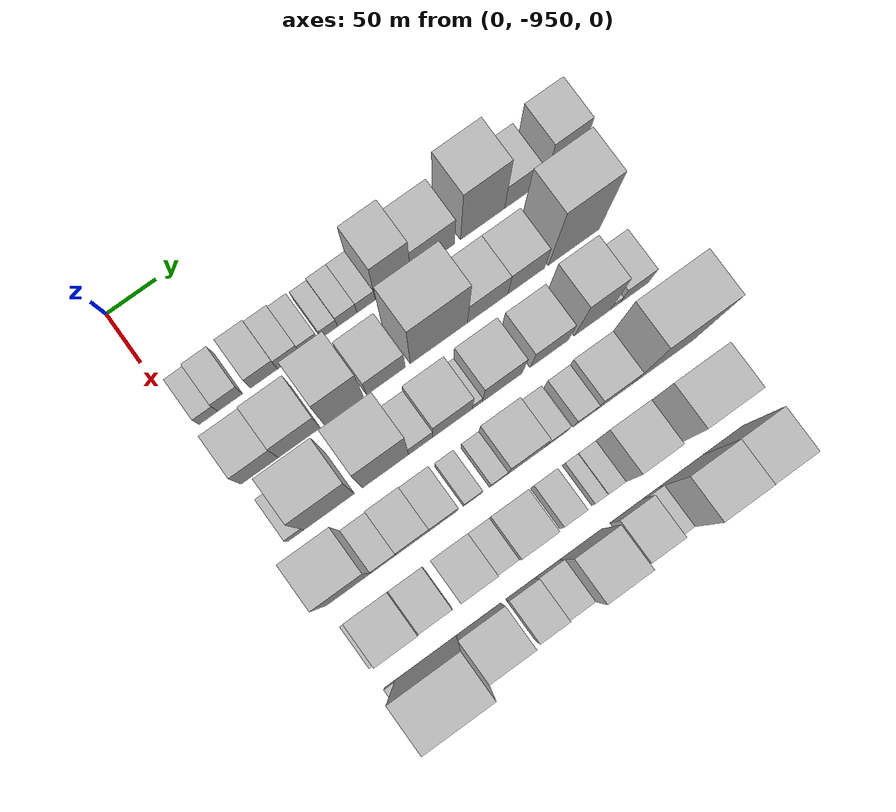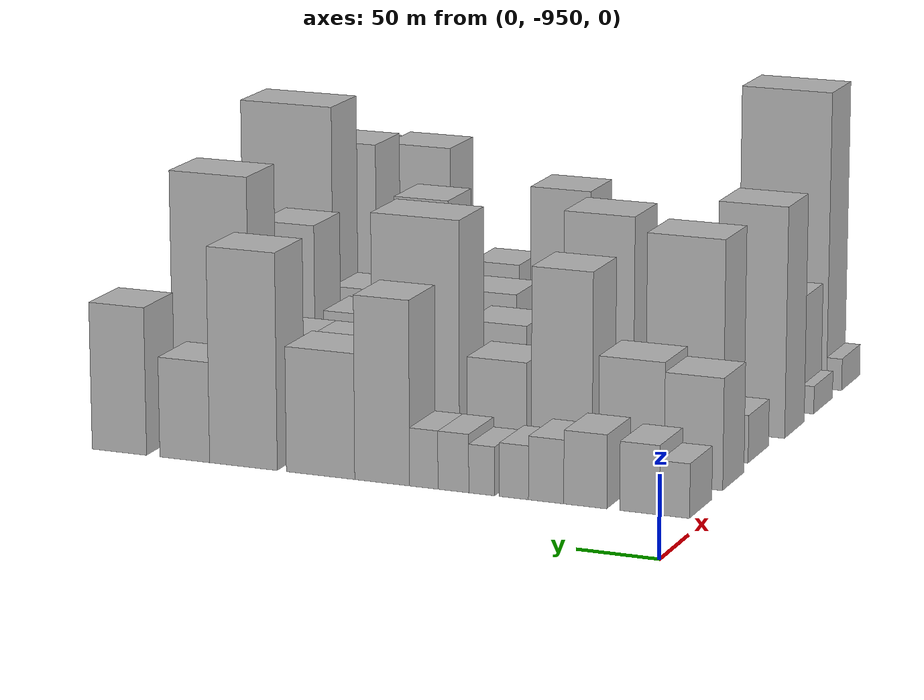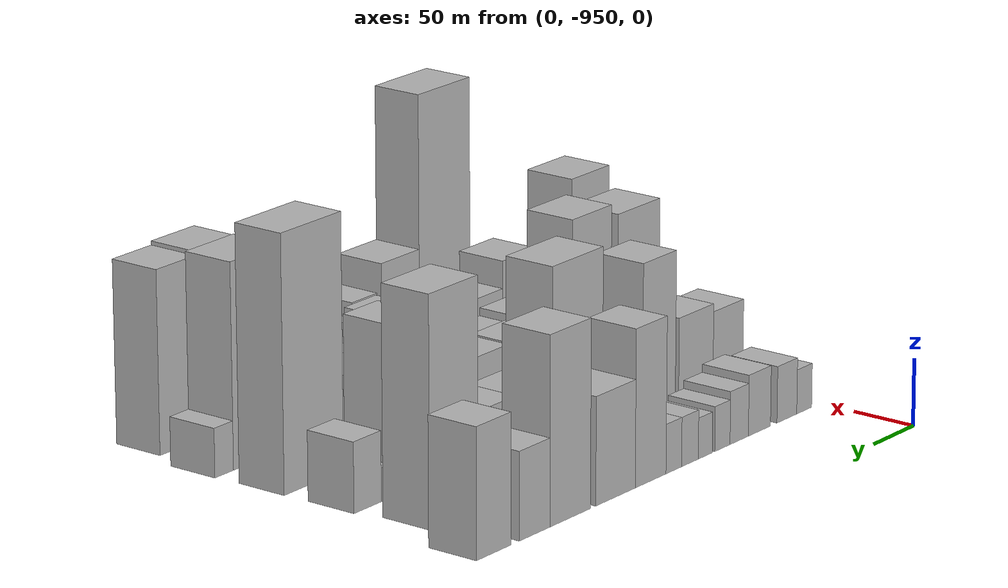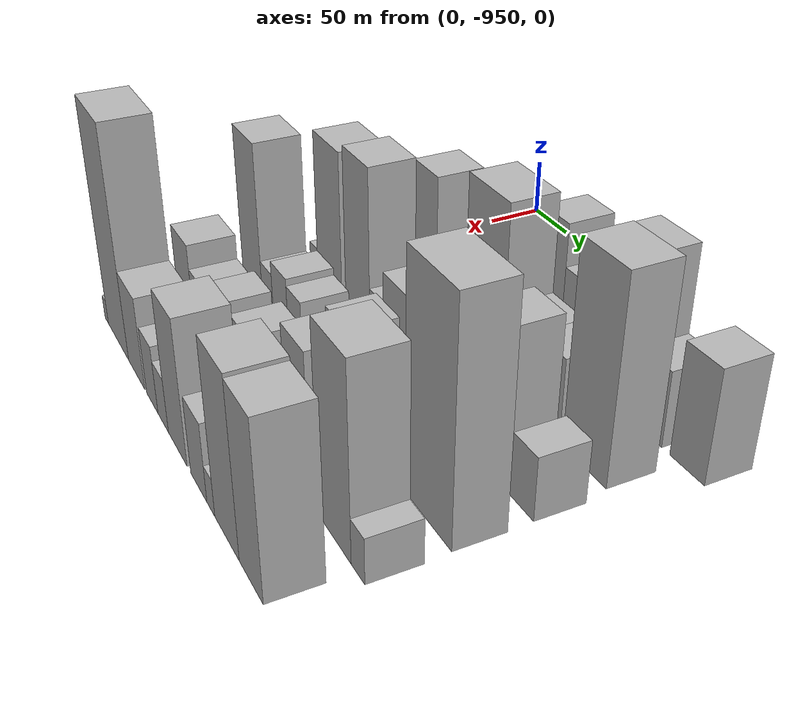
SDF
<sdf version="1.6">
 <world name="default">
  <model name="building_1">
   <static>1</static>
   <pose>100.0000 -930.6970 0 0.000000 0.000000 0.000000</pose>
   <link name="link">
    <pose>0 0 16.50 0 0 0</pose>
    <collision name="collision"><geometry><box><size>40.0000 18.6060 33.0000</size></box></geometry></collision>
    <visual name="visual">
     <cast_shadows>0</cast_shadows>
     <geometry><box><size>40.0000 18.6060 33.0000</size></box></geometry>
     <material>
      <script>
       <uri>model://HANNAS_wall/materials/scripts</uri>
       <uri>model://HANNAS_wall/materials/textures</uri>
       <name>vrc/HANNAS_wall</name>
      </script>
     </material>
    </visual>
   </link>
  </model>
  <model name="building_2">
   <static>1</static>
   <pose>100.0000 -909.1230 0 0.000000 0.000000 0.000000</pose>
   <link name="link">
    <pose>0 0 21.00 0 0 0</pose>
    <collision name="collision"><geometry><box><size>40.0000 24.5421 42.0000</size></box></geometry></collision>
    <visual name="visual">
     <cast_shadows>0</cast_shadows>
     <geometry><box><size>40.0000 24.5421 42.0000</size></box></geometry>
     <material>
      <script>
       <uri>model://HANNAS_wall/materials/scripts</uri>
       <uri>model://HANNAS_wall/materials/textures</uri>
       <name>vrc/HANNAS_wall</name>
      </script>
     </material>
    </visual>
   </link>
  </model>
  <model name="building_3">
   <static>1</static>
   <pose>100.0000 -875.3660 0 0.000000 0.000000 0.000000</pose>
   <link name="link">
    <pose>0 0 22.50 0 0 0</pose>
    <collision name="collision"><geometry><box><size>40.0000 26.9718 45.0000</size></box></geometry></collision>
    <visual name="visual">
     <cast_shadows>0</cast_shadows>
     <geometry><box><size>40.0000 26.9718 45.0000</size></box></geometry>
     <material>
      <script>
       <uri>model://HANNAS_wall/materials/scripts</uri>
       <uri>model://HANNAS_wall/materials/textures</uri>
       <name>vrc/HANNAS_wall</name>
      </script>
     </material>
    </visual>
   </link>
  </model>
  <model name="building_4">
   <static>1</static>
   <pose>100.0000 -850.7518 0 0.000000 0.000000 0.000000</pose>
   <link name="link">
    <pose>0 0 19.50 0 0 0</pose>
    <collision name="collision"><geometry><box><size>40.0000 22.2566 39.0000</size></box></geometry></collision>
    <visual name="visual">
     <cast_shadows>0</cast_shadows>
     <geometry><box><size>40.0000 22.2566 39.0000</size></box></geometry>
     <material>
      <script>
       <uri>model://HANNAS_wall/materials/scripts</uri>
       <uri>model://HANNAS_wall/materials/textures</uri>
       <name>vrc/HANNAS_wall</name>
      </script>
     </material>
    </visual>
   </link>
  </model>
  <model name="building_5">
   <static>1</static>
   <pose>100.0000 -830.4698 0 0.000000 0.000000 0.000000</pose>
   <link name="link">
    <pose>0 0 16.50 0 0 0</pose>
    <collision name="collision"><geometry><box><size>40.0000 18.3075 33.0000</size></box></geometry></collision>
    <visual name="visual">
     <cast_shadows>0</cast_shadows>
     <geometry><box><size>40.0000 18.3075 33.0000</size></box></geometry>
     <material>
      <script>
       <uri>model://HANNAS_wall/materials/scripts</uri>
       <uri>model://HANNAS_wall/materials/textures</uri>
       <name>vrc/HANNAS_wall</name>
      </script>
     </material>
    </visual>
   </link>
  </model>
  <model name="building_6">
   <static>1</static>
   <pose>100.0000 -810.0191 0 0.000000 0.000000 0.000000</pose>
   <link name="link">
    <pose>0 0 15.00 0 0 0</pose>
    <collision name="collision"><geometry><box><size>40.0000 16.5940 30.0000</size></box></geometry></collision>
    <visual name="visual">
     <cast_shadows>0</cast_shadows>
     <geometry><box><size>40.0000 16.5940 30.0000</size></box></geometry>
     <material>
      <script>
       <uri>model://HANNAS_wall/materials/scripts</uri>
       <uri>model://HANNAS_wall/materials/textures</uri>
       <name>vrc/HANNAS_wall</name>
      </script>
     </material>
    </visual>
   </link>
  </model>
  <model name="building_7">
   <static>1</static>
   <pose>100.0000 -791.8548 0 0.000000 0.000000 0.000000</pose>
   <link name="link">
    <pose>0 0 18.00 0 0 0</pose>
    <collision name="collision"><geometry><box><size>40.0000 19.7345 36.0000</size></box></geometry></collision>
    <visual name="visual">
     <cast_shadows>0</cast_shadows>
     <geometry><box><size>40.0000 19.7345 36.0000</size></box></geometry>
     <material>
      <script>
       <uri>model://HANNAS_wall/materials/scripts</uri>
       <uri>model://HANNAS_wall/materials/textures</uri>
       <name>vrc/HANNAS_wall</name>
      </script>
     </material>
    </visual>
   </link>
  </model>
  <model name="building_8">
   <static>1</static>
   <pose>100.0000 -772.8370 0 0.000000 0.000000 0.000000</pose>
   <link name="link">
    <pose>0 0 18.00 0 0 0</pose>
    <collision name="collision"><geometry><box><size>40.0000 18.3012 36.0000</size></box></geometry></collision>
    <visual name="visual">
     <cast_shadows>0</cast_shadows>
     <geometry><box><size>40.0000 18.3012 36.0000</size></box></geometry>
     <material>
      <script>
       <uri>model://HANNAS_wall/materials/scripts</uri>
       <uri>model://HANNAS_wall/materials/textures</uri>
       <name>vrc/HANNAS_wall</name>
      </script>
     </material>
    </visual>
   </link>
  </model>
  <model name="building_9">
   <static>1</static>
   <pose>100.0000 -745.8943 0 0.000000 0.000000 0.000000</pose>
   <link name="link">
    <pose>0 0 57.00 0 0 0</pose>
    <collision name="collision"><geometry><box><size>40.0000 35.5841 114.0000</size></box></geometry></collision>
    <visual name="visual">
     <cast_shadows>0</cast_shadows>
     <geometry><box><size>40.0000 35.5841 114.0000</size></box></geometry>
     <material>
      <script>
       <uri>model://HANNAS_wall/materials/scripts</uri>
       <uri>model://HANNAS_wall/materials/textures</uri>
       <name>vrc/HANNAS_wall</name>
      </script>
     </material>
    </visual>
   </link>
  </model>
  <model name="building_10">
   <static>1</static>
   <pose>100.0000 -705.6278 0 0.000000 0.000000 0.000000</pose>
   <link name="link">
    <pose>0 0 39.00 0 0 0</pose>
    <collision name="collision"><geometry><box><size>40.0000 44.9490 78.0000</size></box></geometry></collision>
    <visual name="visual">
     <cast_shadows>0</cast_shadows>
     <geometry><box><size>40.0000 44.9490 78.0000</size></box></geometry>
     <material>
      <script>
       <uri>model://HANNAS_wall/materials/scripts</uri>
       <uri>model://HANNAS_wall/materials/textures</uri>
       <name>vrc/HANNAS_wall</name>
      </script>
     </material>
    </visual>
   </link>
  </model>
  <model name="building_11">
   <static>1</static>
   <pose>100.0000 -654.5918 0 0.000000 0.000000 0.000000</pose>
   <link name="link">
    <pose>0 0 67.50 0 0 0</pose>
    <collision name="collision"><geometry><box><size>40.0000 45.1232 135.0000</size></box></geometry></collision>
    <visual name="visual">
     <cast_shadows>0</cast_shadows>
     <geometry><box><size>40.0000 45.1232 135.0000</size></box></geometry>
     <material>
      <script>
       <uri>model://HANNAS_wall/materials/scripts</uri>
       <uri>model://HANNAS_wall/materials/textures</uri>
       <name>vrc/HANNAS_wall</name>
      </script>
     </material>
    </visual>
   </link>
  </model>
  <model name="building_12">
   <static>1</static>
   <pose>100.0000 -615.2413 0 0.000000 0.000000 0.000000</pose>
   <link name="link">
    <pose>0 0 31.50 0 0 0</pose>
    <collision name="collision"><geometry><box><size>40.0000 33.5777 63.0000</size></box></geometry></collision>
    <visual name="visual">
     <cast_shadows>0</cast_shadows>
     <geometry><box><size>40.0000 33.5777 63.0000</size></box></geometry>
     <material>
      <script>
       <uri>model://HANNAS_wall/materials/scripts</uri>
       <uri>model://HANNAS_wall/materials/textures</uri>
       <name>vrc/HANNAS_wall</name>
      </script>
     </material>
    </visual>
   </link>
  </model>
  <model name="building_13">
   <static>1</static>
   <pose>100.0000 -570.8924 0 0.000000 0.000000 0.000000</pose>
   <link name="link">
    <pose>0 0 46.50 0 0 0</pose>
    <collision name="collision"><geometry><box><size>40.0000 37.1200 93.0000</size></box></geometry></collision>
    <visual name="visual">
     <cast_shadows>0</cast_shadows>
     <geometry><box><size>40.0000 37.1200 93.0000</size></box></geometry>
     <material>
      <script>
       <uri>model://HANNAS_wall/materials/scripts</uri>
       <uri>model://HANNAS_wall/materials/textures</uri>
       <name>vrc/HANNAS_wall</name>
      </script>
     </material>
    </visual>
   </link>
  </model>
  <model name="building_55">
   <static>1</static>
   <pose>160.0000 -921.5619 0 0.000000 0.000000 0.000000</pose>
   <link name="link">
    <pose>0 0 34.50 0 0 0</pose>
    <collision name="collision"><geometry><box><size>40.0000 36.8763 69.0000</size></box></geometry></collision>
    <visual name="visual">
     <cast_shadows>0</cast_shadows>
     <geometry><box><size>40.0000 36.8763 69.0000</size></box></geometry>
     <material>
      <script>
       <uri>model://HANNAS_wall/materials/scripts</uri>
       <uri>model://HANNAS_wall/materials/textures</uri>
       <name>vrc/HANNAS_wall</name>
      </script>
     </material>
    </visual>
   </link>
  </model>
  <model name="building_56">
   <static>1</static>
   <pose>160.0000 -882.2586 0 0.000000 0.000000 0.000000</pose>
   <link name="link">
    <pose>0 0 37.50 0 0 0</pose>
    <collision name="collision"><geometry><box><size>40.0000 41.7302 75.0000</size></box></geometry></collision>
    <visual name="visual">
     <cast_shadows>0</cast_shadows>
     <geometry><box><size>40.0000 41.7302 75.0000</size></box></geometry>
     <material>
      <script>
       <uri>model://HANNAS_wall/materials/scripts</uri>
       <uri>model://HANNAS_wall/materials/textures</uri>
       <name>vrc/HANNAS_wall</name>
      </script>
     </material>
    </visual>
   </link>
  </model>
  <model name="building_57">
   <static>1</static>
   <pose>160.0000 -837.8161 0 0.000000 0.000000 0.000000</pose>
   <link name="link">
    <pose>0 0 63.00 0 0 0</pose>
    <collision name="collision"><geometry><box><size>40.0000 39.1547 126.0000</size></box></geometry></collision>
    <visual name="visual">
     <cast_shadows>0</cast_shadows>
     <geometry><box><size>40.0000 39.1547 126.0000</size></box></geometry>
     <material>
      <script>
       <uri>model://HANNAS_wall/materials/scripts</uri>
       <uri>model://HANNAS_wall/materials/textures</uri>
       <name>vrc/HANNAS_wall</name>
      </script>
     </material>
    </visual>
   </link>
  </model>
  <model name="building_58">
   <static>1</static>
   <pose>160.0000 -795.7732 0 0.000000 0.000000 0.000000</pose>
   <link name="link">
    <pose>0 0 33.00 0 0 0</pose>
    <collision name="collision"><geometry><box><size>40.0000 38.9312 66.0000</size></box></geometry></collision>
    <visual name="visual">
     <cast_shadows>0</cast_shadows>
     <geometry><box><size>40.0000 38.9312 66.0000</size></box></geometry>
     <material>
      <script>
       <uri>model://HANNAS_wall/materials/scripts</uri>
       <uri>model://HANNAS_wall/materials/textures</uri>
       <name>vrc/HANNAS_wall</name>
      </script>
     </material>
    </visual>
   </link>
  </model>
  <model name="building_59">
   <static>1</static>
   <pose>160.0000 -742.4907 0 0.000000 0.000000 0.000000</pose>
   <link name="link">
    <pose>0 0 75.00 0 0 0</pose>
    <collision name="collision"><geometry><box><size>40.0000 57.6338 150.0000</size></box></geometry></collision>
    <visual name="visual">
     <cast_shadows>0</cast_shadows>
     <geometry><box><size>40.0000 57.6338 150.0000</size></box></geometry>
     <material>
      <script>
       <uri>model://HANNAS_wall/materials/scripts</uri>
       <uri>model://HANNAS_wall/materials/textures</uri>
       <name>vrc/HANNAS_wall</name>
      </script>
     </material>
    </visual>
   </link>
  </model>
  <model name="building_60">
   <static>1</static>
   <pose>160.0000 -693.0982 0 0.000000 0.000000 0.000000</pose>
   <link name="link">
    <pose>0 0 34.50 0 0 0</pose>
    <collision name="collision"><geometry><box><size>40.0000 41.1514 69.0000</size></box></geometry></collision>
    <visual name="visual">
     <cast_shadows>0</cast_shadows>
     <geometry><box><size>40.0000 41.1514 69.0000</size></box></geometry>
     <material>
      <script>
       <uri>model://HANNAS_wall/materials/scripts</uri>
       <uri>model://HANNAS_wall/materials/textures</uri>
       <name>vrc/HANNAS_wall</name>
      </script>
     </material>
    </visual>
   </link>
  </model>
  <model name="building_61">
   <static>1</static>
   <pose>160.0000 -653.8175 0 0.000000 0.000000 0.000000</pose>
   <link name="link">
    <pose>0 0 34.50 0 0 0</pose>
    <collision name="collision"><geometry><box><size>40.0000 37.4099 69.0000</size></box></geometry></collision>
    <visual name="visual">
     <cast_shadows>0</cast_shadows>
     <geometry><box><size>40.0000 37.4099 69.0000</size></box></geometry>
     <material>
      <script>
       <uri>model://HANNAS_wall/materials/scripts</uri>
       <uri>model://HANNAS_wall/materials/textures</uri>
       <name>vrc/HANNAS_wall</name>
      </script>
     </material>
    </visual>
   </link>
  </model>
  <model name="building_62">
   <static>1</static>
   <pose>160.0000 -604.9038 0 0.000000 0.000000 0.000000</pose>
   <link name="link">
    <pose>0 0 82.50 0 0 0</pose>
    <collision name="collision"><geometry><box><size>40.0000 52.4174 165.0000</size></box></geometry></collision>
    <visual name="visual">
     <cast_shadows>0</cast_shadows>
     <geometry><box><size>40.0000 52.4174 165.0000</size></box></geometry>
     <material>
      <script>
       <uri>model://HANNAS_wall/materials/scripts</uri>
       <uri>model://HANNAS_wall/materials/textures</uri>
       <name>vrc/HANNAS_wall</name>
      </script>
     </material>
    </visual>
   </link>
  </model>
  <model name="building_109">
   <static>1</static>
   <pose>220.0000 -927.9561 0 0.000000 0.000000 0.000000</pose>
   <link name="link">
    <pose>0 0 15.00 0 0 0</pose>
    <collision name="collision"><geometry><box><size>40.0000 16.0878 30.0000</size></box></geometry></collision>
    <visual name="visual">
     <cast_shadows>0</cast_shadows>
     <geometry><box><size>40.0000 16.0878 30.0000</size></box></geometry>
     <material>
      <script>
       <uri>model://HANNAS_wall/materials/scripts</uri>
       <uri>model://HANNAS_wall/materials/textures</uri>
       <name>vrc/HANNAS_wall</name>
      </script>
     </material>
    </visual>
   </link>
  </model>
  <model name="building_110">
   <static>1</static>
   <pose>220.0000 -894.9111 0 0.000000 0.000000 0.000000</pose>
   <link name="link">
    <pose>0 0 69.00 0 0 0</pose>
    <collision name="collision"><geometry><box><size>40.0000 50.0023 138.0000</size></box></geometry></collision>
    <visual name="visual">
     <cast_shadows>0</cast_shadows>
     <geometry><box><size>40.0000 50.0023 138.0000</size></box></geometry>
     <material>
      <script>
       <uri>model://HANNAS_wall/materials/scripts</uri>
       <uri>model://HANNAS_wall/materials/textures</uri>
       <name>vrc/HANNAS_wall</name>
      </script>
     </material>
    </visual>
   </link>
  </model>
  <model name="building_111">
   <static>1</static>
   <pose>220.0000 -838.9788 0 0.000000 0.000000 0.000000</pose>
   <link name="link">
    <pose>0 0 73.50 0 0 0</pose>
    <collision name="collision"><geometry><box><size>40.0000 45.8623 147.0000</size></box></geometry></collision>
    <visual name="visual">
     <cast_shadows>0</cast_shadows>
     <geometry><box><size>40.0000 45.8623 147.0000</size></box></geometry>
     <material>
      <script>
       <uri>model://HANNAS_wall/materials/scripts</uri>
       <uri>model://HANNAS_wall/materials/textures</uri>
       <name>vrc/HANNAS_wall</name>
      </script>
     </material>
    </visual>
   </link>
  </model>
  <model name="building_112">
   <static>1</static>
   <pose>220.0000 -803.9670 0 0.000000 0.000000 0.000000</pose>
   <link name="link">
    <pose>0 0 22.50 0 0 0</pose>
    <collision name="collision"><geometry><box><size>40.0000 24.1612 45.0000</size></box></geometry></collision>
    <visual name="visual">
     <cast_shadows>0</cast_shadows>
     <geometry><box><size>40.0000 24.1612 45.0000</size></box></geometry>
     <material>
      <script>
       <uri>model://HANNAS_wall/materials/scripts</uri>
       <uri>model://HANNAS_wall/materials/textures</uri>
       <name>vrc/HANNAS_wall</name>
      </script>
     </material>
    </visual>
   </link>
  </model>
  <model name="building_113">
   <static>1</static>
   <pose>220.0000 -772.1821 0 0.000000 0.000000 0.000000</pose>
   <link name="link">
    <pose>0 0 36.00 0 0 0</pose>
    <collision name="collision"><geometry><box><size>40.0000 39.4087 72.0000</size></box></geometry></collision>
    <visual name="visual">
     <cast_shadows>0</cast_shadows>
     <geometry><box><size>40.0000 39.4087 72.0000</size></box></geometry>
     <material>
      <script>
       <uri>model://HANNAS_wall/materials/scripts</uri>
       <uri>model://HANNAS_wall/materials/textures</uri>
       <name>vrc/HANNAS_wall</name>
      </script>
     </material>
    </visual>
   </link>
  </model>
  <model name="building_114">
   <static>1</static>
   <pose>220.0000 -747.4116 0 0.000000 0.000000 0.000000</pose>
   <link name="link">
    <pose>0 0 12.00 0 0 0</pose>
    <collision name="collision"><geometry><box><size>40.0000 10.1324 24.0000</size></box></geometry></collision>
    <visual name="visual">
     <cast_shadows>0</cast_shadows>
     <geometry><box><size>40.0000 10.1324 24.0000</size></box></geometry>
     <material>
      <script>
       <uri>model://HANNAS_wall/materials/scripts</uri>
       <uri>model://HANNAS_wall/materials/textures</uri>
       <name>vrc/HANNAS_wall</name>
      </script>
     </material>
    </visual>
   </link>
  </model>
  <model name="building_115">
   <static>1</static>
   <pose>220.0000 -722.0015 0 0.000000 0.000000 0.000000</pose>
   <link name="link">
    <pose>0 0 37.50 0 0 0</pose>
    <collision name="collision"><geometry><box><size>40.0000 40.6878 75.0000</size></box></geometry></collision>
    <visual name="visual">
     <cast_shadows>0</cast_shadows>
     <geometry><box><size>40.0000 40.6878 75.0000</size></box></geometry>
     <material>
      <script>
       <uri>model://HANNAS_wall/materials/scripts</uri>
       <uri>model://HANNAS_wall/materials/textures</uri>
       <name>vrc/HANNAS_wall</name>
      </script>
     </material>
    </visual>
   </link>
  </model>
  <model name="building_116">
   <static>1</static>
   <pose>220.0000 -674.2500 0 0.000000 0.000000 0.000000</pose>
   <link name="link">
    <pose>0 0 34.50 0 0 0</pose>
    <collision name="collision"><geometry><box><size>40.0000 38.8151 69.0000</size></box></geometry></collision>
    <visual name="visual">
     <cast_shadows>0</cast_shadows>
     <geometry><box><size>40.0000 38.8151 69.0000</size></box></geometry>
     <material>
      <script>
       <uri>model://HANNAS_wall/materials/scripts</uri>
       <uri>model://HANNAS_wall/materials/textures</uri>
       <name>vrc/HANNAS_wall</name>
      </script>
     </material>
    </visual>
   </link>
  </model>
  <model name="building_117">
   <static>1</static>
   <pose>220.0000 -630.3171 0 0.000000 0.000000 0.000000</pose>
   <link name="link">
    <pose>0 0 61.50 0 0 0</pose>
    <collision name="collision"><geometry><box><size>40.0000 37.0508 123.0000</size></box></geometry></collision>
    <visual name="visual">
     <cast_shadows>0</cast_shadows>
     <geometry><box><size>40.0000 37.0508 123.0000</size></box></geometry>
     <material>
      <script>
       <uri>model://HANNAS_wall/materials/scripts</uri>
       <uri>model://HANNAS_wall/materials/textures</uri>
       <name>vrc/HANNAS_wall</name>
      </script>
     </material>
    </visual>
   </link>
  </model>
  <model name="building_118">
   <static>1</static>
   <pose>220.0000 -606.8396 0 0.000000 0.000000 0.000000</pose>
   <link name="link">
    <pose>0 0 12.00 0 0 0</pose>
    <collision name="collision"><geometry><box><size>40.0000 9.9041 24.0000</size></box></geometry></collision>
    <visual name="visual">
     <cast_shadows>0</cast_shadows>
     <geometry><box><size>40.0000 9.9041 24.0000</size></box></geometry>
     <material>
      <script>
       <uri>model://HANNAS_wall/materials/scripts</uri>
       <uri>model://HANNAS_wall/materials/textures</uri>
       <name>vrc/HANNAS_wall</name>
      </script>
     </material>
    </visual>
   </link>
  </model>
  <model name="building_119">
   <static>1</static>
   <pose>220.0000 -587.2385 0 0.000000 0.000000 0.000000</pose>
   <link name="link">
    <pose>0 0 25.50 0 0 0</pose>
    <collision name="collision"><geometry><box><size>40.0000 29.2981 51.0000</size></box></geometry></collision>
    <visual name="visual">
     <cast_shadows>0</cast_shadows>
     <geometry><box><size>40.0000 29.2981 51.0000</size></box></geometry>
     <material>
      <script>
       <uri>model://HANNAS_wall/materials/scripts</uri>
       <uri>model://HANNAS_wall/materials/textures</uri>
       <name>vrc/HANNAS_wall</name>
      </script>
     </material>
    </visual>
   </link>
  </model>
  <model name="building_161">
   <static>1</static>
   <pose>280.0000 -917.5555 0 0.000000 0.000000 0.000000</pose>
   <link name="link">
    <pose>0 0 73.50 0 0 0</pose>
    <collision name="collision"><geometry><box><size>40.0000 44.8889 147.0000</size></box></geometry></collision>
    <visual name="visual">
     <cast_shadows>0</cast_shadows>
     <geometry><box><size>40.0000 44.8889 147.0000</size></box></geometry>
     <material>
      <script>
       <uri>model://HANNAS_wall/materials/scripts</uri>
       <uri>model://HANNAS_wall/materials/textures</uri>
       <name>vrc/HANNAS_wall</name>
      </script>
     </material>
    </visual>
   </link>
  </model>
  <model name="building_162">
   <static>1</static>
   <pose>280.0000 -882.9296 0 0.000000 0.000000 0.000000</pose>
   <link name="link">
    <pose>0 0 22.50 0 0 0</pose>
    <collision name="collision"><geometry><box><size>40.0000 24.3629 45.0000</size></box></geometry></collision>
    <visual name="visual">
     <cast_shadows>0</cast_shadows>
     <geometry><box><size>40.0000 24.3629 45.0000</size></box></geometry>
     <material>
      <script>
       <uri>model://HANNAS_wall/materials/scripts</uri>
       <uri>model://HANNAS_wall/materials/textures</uri>
       <name>vrc/HANNAS_wall</name>
      </script>
     </material>
    </visual>
   </link>
  </model>
  <model name="building_163">
   <static>1</static>
   <pose>280.0000 -854.7456 0 0.000000 0.000000 0.000000</pose>
   <link name="link">
    <pose>0 0 28.50 0 0 0</pose>
    <collision name="collision"><geometry><box><size>40.0000 32.0053 57.0000</size></box></geometry></collision>
    <visual name="visual">
     <cast_shadows>0</cast_shadows>
     <geometry><box><size>40.0000 32.0053 57.0000</size></box></geometry>
     <material>
      <script>
       <uri>model://HANNAS_wall/materials/scripts</uri>
       <uri>model://HANNAS_wall/materials/textures</uri>
       <name>vrc/HANNAS_wall</name>
      </script>
     </material>
    </visual>
   </link>
  </model>
  <model name="building_164">
   <static>1</static>
   <pose>280.0000 -824.6049 0 0.000000 0.000000 0.000000</pose>
   <link name="link">
    <pose>0 0 25.50 0 0 0</pose>
    <collision name="collision"><geometry><box><size>40.0000 28.2760 51.0000</size></box></geometry></collision>
    <visual name="visual">
     <cast_shadows>0</cast_shadows>
     <geometry><box><size>40.0000 28.2760 51.0000</size></box></geometry>
     <material>
      <script>
       <uri>model://HANNAS_wall/materials/scripts</uri>
       <uri>model://HANNAS_wall/materials/textures</uri>
       <name>vrc/HANNAS_wall</name>
      </script>
     </material>
    </visual>
   </link>
  </model>
  <model name="building_165">
   <static>1</static>
   <pose>280.0000 -795.3845 0 0.000000 0.000000 0.000000</pose>
   <link name="link">
    <pose>0 0 16.50 0 0 0</pose>
    <collision name="collision"><geometry><box><size>40.0000 18.1649 33.0000</size></box></geometry></collision>
    <visual name="visual">
     <cast_shadows>0</cast_shadows>
     <geometry><box><size>40.0000 18.1649 33.0000</size></box></geometry>
     <material>
      <script>
       <uri>model://HANNAS_wall/materials/scripts</uri>
       <uri>model://HANNAS_wall/materials/textures</uri>
       <name>vrc/HANNAS_wall</name>
      </script>
     </material>
    </visual>
   </link>
  </model>
  <model name="building_166">
   <static>1</static>
   <pose>280.0000 -769.8248 0 0.000000 0.000000 0.000000</pose>
   <link name="link">
    <pose>0 0 16.50 0 0 0</pose>
    <collision name="collision"><geometry><box><size>40.0000 16.9545 33.0000</size></box></geometry></collision>
    <visual name="visual">
     <cast_shadows>0</cast_shadows>
     <geometry><box><size>40.0000 16.9545 33.0000</size></box></geometry>
     <material>
      <script>
       <uri>model://HANNAS_wall/materials/scripts</uri>
       <uri>model://HANNAS_wall/materials/textures</uri>
       <name>vrc/HANNAS_wall</name>
      </script>
     </material>
    </visual>
   </link>
  </model>
  <model name="building_167">
   <static>1</static>
   <pose>280.0000 -742.4492 0 0.000000 0.000000 0.000000</pose>
   <link name="link">
    <pose>0 0 37.50 0 0 0</pose>
    <collision name="collision"><geometry><box><size>40.0000 37.7968 75.0000</size></box></geometry></collision>
    <visual name="visual">
     <cast_shadows>0</cast_shadows>
     <geometry><box><size>40.0000 37.7968 75.0000</size></box></geometry>
     <material>
      <script>
       <uri>model://HANNAS_wall/materials/scripts</uri>
       <uri>model://HANNAS_wall/materials/textures</uri>
       <name>vrc/HANNAS_wall</name>
      </script>
     </material>
    </visual>
   </link>
  </model>
  <model name="building_168">
   <static>1</static>
   <pose>280.0000 -711.9167 0 0.000000 0.000000 0.000000</pose>
   <link name="link">
    <pose>0 0 19.50 0 0 0</pose>
    <collision name="collision"><geometry><box><size>40.0000 23.2680 39.0000</size></box></geometry></collision>
    <visual name="visual">
     <cast_shadows>0</cast_shadows>
     <geometry><box><size>40.0000 23.2680 39.0000</size></box></geometry>
     <material>
      <script>
       <uri>model://HANNAS_wall/materials/scripts</uri>
       <uri>model://HANNAS_wall/materials/textures</uri>
       <name>vrc/HANNAS_wall</name>
      </script>
     </material>
    </visual>
   </link>
  </model>
  <model name="building_169">
   <static>1</static>
   <pose>280.0000 -683.4026 0 0.000000 0.000000 0.000000</pose>
   <link name="link">
    <pose>0 0 21.00 0 0 0</pose>
    <collision name="collision"><geometry><box><size>40.0000 21.7603 42.0000</size></box></geometry></collision>
    <visual name="visual">
     <cast_shadows>0</cast_shadows>
     <geometry><box><size>40.0000 21.7603 42.0000</size></box></geometry>
     <material>
      <script>
       <uri>model://HANNAS_wall/materials/scripts</uri>
       <uri>model://HANNAS_wall/materials/textures</uri>
       <name>vrc/HANNAS_wall</name>
      </script>
     </material>
    </visual>
   </link>
  </model>
  <model name="building_170">
   <static>1</static>
   <pose>280.0000 -653.6418 0 0.000000 0.000000 0.000000</pose>
   <link name="link">
    <pose>0 0 34.50 0 0 0</pose>
    <collision name="collision"><geometry><box><size>40.0000 37.7612 69.0000</size></box></geometry></collision>
    <visual name="visual">
     <cast_shadows>0</cast_shadows>
     <geometry><box><size>40.0000 37.7612 69.0000</size></box></geometry>
     <material>
      <script>
       <uri>model://HANNAS_wall/materials/scripts</uri>
       <uri>model://HANNAS_wall/materials/textures</uri>
       <name>vrc/HANNAS_wall</name>
      </script>
     </material>
    </visual>
   </link>
  </model>
  <model name="building_171">
   <static>1</static>
   <pose>280.0000 -603.0495 0 0.000000 0.000000 0.000000</pose>
   <link name="link">
    <pose>0 0 93.00 0 0 0</pose>
    <collision name="collision"><geometry><box><size>40.0000 63.4233 186.0000</size></box></geometry></collision>
    <visual name="visual">
     <cast_shadows>0</cast_shadows>
     <geometry><box><size>40.0000 63.4233 186.0000</size></box></geometry>
     <material>
      <script>
       <uri>model://HANNAS_wall/materials/scripts</uri>
       <uri>model://HANNAS_wall/materials/textures</uri>
       <name>vrc/HANNAS_wall</name>
      </script>
     </material>
    </visual>
   </link>
  </model>
  <model name="building_217">
   <static>1</static>
   <pose>340.0000 -936.1066 0 0.000000 0.000000 0.000000</pose>
   <link name="link">
    <pose>0 0 9.00 0 0 0</pose>
    <collision name="collision"><geometry><box><size>40.0000 7.7868 18.0000</size></box></geometry></collision>
    <visual name="visual">
     <cast_shadows>0</cast_shadows>
     <geometry><box><size>40.0000 7.7868 18.0000</size></box></geometry>
     <material>
      <script>
       <uri>model://HANNAS_wall/materials/scripts</uri>
       <uri>model://HANNAS_wall/materials/textures</uri>
       <name>vrc/HANNAS_wall</name>
      </script>
     </material>
    </visual>
   </link>
  </model>
  <model name="building_218">
   <static>1</static>
   <pose>340.0000 -911.9743 0 0.000000 0.000000 0.000000</pose>
   <link name="link">
    <pose>0 0 37.50 0 0 0</pose>
    <collision name="collision"><geometry><box><size>40.0000 40.4778 75.0000</size></box></geometry></collision>
    <visual name="visual">
     <cast_shadows>0</cast_shadows>
     <geometry><box><size>40.0000 40.4778 75.0000</size></box></geometry>
     <material>
      <script>
       <uri>model://HANNAS_wall/materials/scripts</uri>
       <uri>model://HANNAS_wall/materials/textures</uri>
       <name>vrc/HANNAS_wall</name>
      </script>
     </material>
    </visual>
   </link>
  </model>
  <model name="building_219">
   <static>1</static>
   <pose>340.0000 -875.6809 0 0.000000 0.000000 0.000000</pose>
   <link name="link">
    <pose>0 0 27.00 0 0 0</pose>
    <collision name="collision"><geometry><box><size>40.0000 32.1091 54.0000</size></box></geometry></collision>
    <visual name="visual">
     <cast_shadows>0</cast_shadows>
     <geometry><box><size>40.0000 32.1091 54.0000</size></box></geometry>
     <material>
      <script>
       <uri>model://HANNAS_wall/materials/scripts</uri>
       <uri>model://HANNAS_wall/materials/textures</uri>
       <name>vrc/HANNAS_wall</name>
      </script>
     </material>
    </visual>
   </link>
  </model>
  <model name="building_220">
   <static>1</static>
   <pose>340.0000 -833.9752 0 0.000000 0.000000 0.000000</pose>
   <link name="link">
    <pose>0 0 31.50 0 0 0</pose>
    <collision name="collision"><geometry><box><size>40.0000 35.3023 63.0000</size></box></geometry></collision>
    <visual name="visual">
     <cast_shadows>0</cast_shadows>
     <geometry><box><size>40.0000 35.3023 63.0000</size></box></geometry>
     <material>
      <script>
       <uri>model://HANNAS_wall/materials/scripts</uri>
       <uri>model://HANNAS_wall/materials/textures</uri>
       <name>vrc/HANNAS_wall</name>
      </script>
     </material>
    </visual>
   </link>
  </model>
  <model name="building_221">
   <static>1</static>
   <pose>340.0000 -805.5671 0 0.000000 0.000000 0.000000</pose>
   <link name="link">
    <pose>0 0 18.00 0 0 0</pose>
    <collision name="collision"><geometry><box><size>40.0000 21.5138 36.0000</size></box></geometry></collision>
    <visual name="visual">
     <cast_shadows>0</cast_shadows>
     <geometry><box><size>40.0000 21.5138 36.0000</size></box></geometry>
     <material>
      <script>
       <uri>model://HANNAS_wall/materials/scripts</uri>
       <uri>model://HANNAS_wall/materials/textures</uri>
       <name>vrc/HANNAS_wall</name>
      </script>
     </material>
    </visual>
   </link>
  </model>
  <model name="building_222">
   <static>1</static>
   <pose>340.0000 -776.8798 0 0.000000 0.000000 0.000000</pose>
   <link name="link">
    <pose>0 0 33.00 0 0 0</pose>
    <collision name="collision"><geometry><box><size>40.0000 35.8609 66.0000</size></box></geometry></collision>
    <visual name="visual">
     <cast_shadows>0</cast_shadows>
     <geometry><box><size>40.0000 35.8609 66.0000</size></box></geometry>
     <material>
      <script>
       <uri>model://HANNAS_wall/materials/scripts</uri>
       <uri>model://HANNAS_wall/materials/textures</uri>
       <name>vrc/HANNAS_wall</name>
      </script>
     </material>
    </visual>
   </link>
  </model>
  <model name="building_223">
   <static>1</static>
   <pose>340.0000 -740.4618 0 0.000000 0.000000 0.000000</pose>
   <link name="link">
    <pose>0 0 21.00 0 0 0</pose>
    <collision name="collision"><geometry><box><size>40.0000 22.9750 42.0000</size></box></geometry></collision>
    <visual name="visual">
     <cast_shadows>0</cast_shadows>
     <geometry><box><size>40.0000 22.9750 42.0000</size></box></geometry>
     <material>
      <script>
       <uri>model://HANNAS_wall/materials/scripts</uri>
       <uri>model://HANNAS_wall/materials/textures</uri>
       <name>vrc/HANNAS_wall</name>
      </script>
     </material>
    </visual>
   </link>
  </model>
  <model name="building_224">
   <static>1</static>
   <pose>340.0000 -713.5941 0 0.000000 0.000000 0.000000</pose>
   <link name="link">
    <pose>0 0 13.50 0 0 0</pose>
    <collision name="collision"><geometry><box><size>40.0000 12.7605 27.0000</size></box></geometry></collision>
    <visual name="visual">
     <cast_shadows>0</cast_shadows>
     <geometry><box><size>40.0000 12.7605 27.0000</size></box></geometry>
     <material>
      <script>
       <uri>model://HANNAS_wall/materials/scripts</uri>
       <uri>model://HANNAS_wall/materials/textures</uri>
       <name>vrc/HANNAS_wall</name>
      </script>
     </material>
    </visual>
   </link>
  </model>
  <model name="building_225">
   <static>1</static>
   <pose>340.0000 -698.6753 0 0.000000 0.000000 0.000000</pose>
   <link name="link">
    <pose>0 0 15.00 0 0 0</pose>
    <collision name="collision"><geometry><box><size>40.0000 17.0770 30.0000</size></box></geometry></collision>
    <visual name="visual">
     <cast_shadows>0</cast_shadows>
     <geometry><box><size>40.0000 17.0770 30.0000</size></box></geometry>
     <material>
      <script>
       <uri>model://HANNAS_wall/materials/scripts</uri>
       <uri>model://HANNAS_wall/materials/textures</uri>
       <name>vrc/HANNAS_wall</name>
      </script>
     </material>
    </visual>
   </link>
  </model>
  <model name="building_226">
   <static>1</static>
   <pose>340.0000 -671.2543 0 0.000000 0.000000 0.000000</pose>
   <link name="link">
    <pose>0 0 58.50 0 0 0</pose>
    <collision name="collision"><geometry><box><size>40.0000 37.7650 117.0000</size></box></geometry></collision>
    <visual name="visual">
     <cast_shadows>0</cast_shadows>
     <geometry><box><size>40.0000 37.7650 117.0000</size></box></geometry>
     <material>
      <script>
       <uri>model://HANNAS_wall/materials/scripts</uri>
       <uri>model://HANNAS_wall/materials/textures</uri>
       <name>vrc/HANNAS_wall</name>
      </script>
     </material>
    </visual>
   </link>
  </model>
  <model name="building_227">
   <static>1</static>
   <pose>340.0000 -643.3027 0 0.000000 0.000000 0.000000</pose>
   <link name="link">
    <pose>0 0 9.00 0 0 0</pose>
    <collision name="collision"><geometry><box><size>40.0000 8.1381 18.0000</size></box></geometry></collision>
    <visual name="visual">
     <cast_shadows>0</cast_shadows>
     <geometry><box><size>40.0000 8.1381 18.0000</size></box></geometry>
     <material>
      <script>
       <uri>model://HANNAS_wall/materials/scripts</uri>
       <uri>model://HANNAS_wall/materials/textures</uri>
       <name>vrc/HANNAS_wall</name>
      </script>
     </material>
    </visual>
   </link>
  </model>
  <model name="building_228">
   <static>1</static>
   <pose>340.0000 -614.0665 0 0.000000 0.000000 0.000000</pose>
   <link name="link">
    <pose>0 0 75.00 0 0 0</pose>
    <collision name="collision"><geometry><box><size>40.0000 50.3343 150.0000</size></box></geometry></collision>
    <visual name="visual">
     <cast_shadows>0</cast_shadows>
     <geometry><box><size>40.0000 50.3343 150.0000</size></box></geometry>
     <material>
      <script>
       <uri>model://HANNAS_wall/materials/scripts</uri>
       <uri>model://HANNAS_wall/materials/textures</uri>
       <name>vrc/HANNAS_wall</name>
      </script>
     </material>
    </visual>
   </link>
  </model>
  <model name="building_229">
   <static>1</static>
   <pose>340.0000 -579.0975 0 0.000000 0.000000 0.000000</pose>
   <link name="link">
    <pose>0 0 18.00 0 0 0</pose>
    <collision name="collision"><geometry><box><size>40.0000 19.6038 36.0000</size></box></geometry></collision>
    <visual name="visual">
     <cast_shadows>0</cast_shadows>
     <geometry><box><size>40.0000 19.6038 36.0000</size></box></geometry>
     <material>
      <script>
       <uri>model://HANNAS_wall/materials/scripts</uri>
       <uri>model://HANNAS_wall/materials/textures</uri>
       <name>vrc/HANNAS_wall</name>
      </script>
     </material>
    </visual>
   </link>
  </model>
  <model name="building_276">
   <static>1</static>
   <pose>400.0000 -934.8800 0 0.000000 0.000000 0.000000</pose>
   <link name="link">
    <pose>0 0 10.50 0 0 0</pose>
    <collision name="collision"><geometry><box><size>40.0000 10.2400 21.0000</size></box></geometry></collision>
    <visual name="visual">
     <cast_shadows>0</cast_shadows>
     <geometry><box><size>40.0000 10.2400 21.0000</size></box></geometry>
     <material>
      <script>
       <uri>model://HANNAS_wall/materials/scripts</uri>
       <uri>model://HANNAS_wall/materials/textures</uri>
       <name>vrc/HANNAS_wall</name>
      </script>
     </material>
    </visual>
   </link>
  </model>
  <model name="building_277">
   <static>1</static>
   <pose>400.0000 -899.6413 0 0.000000 0.000000 0.000000</pose>
   <link name="link">
    <pose>0 0 97.50 0 0 0</pose>
    <collision name="collision"><geometry><box><size>40.0000 60.2374 195.0000</size></box></geometry></collision>
    <visual name="visual">
     <cast_shadows>0</cast_shadows>
     <geometry><box><size>40.0000 60.2374 195.0000</size></box></geometry>
     <material>
      <script>
       <uri>model://HANNAS_wall/materials/scripts</uri>
       <uri>model://HANNAS_wall/materials/textures</uri>
       <name>vrc/HANNAS_wall</name>
      </script>
     </material>
    </visual>
   </link>
  </model>
  <model name="building_278">
   <static>1</static>
   <pose>400.0000 -847.6219 0 0.000000 0.000000 0.000000</pose>
   <link name="link">
    <pose>0 0 39.00 0 0 0</pose>
    <collision name="collision"><geometry><box><size>40.0000 43.8014 78.0000</size></box></geometry></collision>
    <visual name="visual">
     <cast_shadows>0</cast_shadows>
     <geometry><box><size>40.0000 43.8014 78.0000</size></box></geometry>
     <material>
      <script>
       <uri>model://HANNAS_wall/materials/scripts</uri>
       <uri>model://HANNAS_wall/materials/textures</uri>
       <name>vrc/HANNAS_wall</name>
      </script>
     </material>
    </visual>
   </link>
  </model>
  <model name="building_279">
   <static>1</static>
   <pose>400.0000 -806.2873 0 0.000000 0.000000 0.000000</pose>
   <link name="link">
    <pose>0 0 28.50 0 0 0</pose>
    <collision name="collision"><geometry><box><size>40.0000 28.8679 57.0000</size></box></geometry></collision>
    <visual name="visual">
     <cast_shadows>0</cast_shadows>
     <geometry><box><size>40.0000 28.8679 57.0000</size></box></geometry>
     <material>
      <script>
       <uri>model://HANNAS_wall/materials/scripts</uri>
       <uri>model://HANNAS_wall/materials/textures</uri>
       <name>vrc/HANNAS_wall</name>
      </script>
     </material>
    </visual>
   </link>
  </model>
  <model name="building_280">
   <static>1</static>
   <pose>400.0000 -779.2423 0 0.000000 0.000000 0.000000</pose>
   <link name="link">
    <pose>0 0 22.50 0 0 0</pose>
    <collision name="collision"><geometry><box><size>40.0000 25.2221 45.0000</size></box></geometry></collision>
    <visual name="visual">
     <cast_shadows>0</cast_shadows>
     <geometry><box><size>40.0000 25.2221 45.0000</size></box></geometry>
     <material>
      <script>
       <uri>model://HANNAS_wall/materials/scripts</uri>
       <uri>model://HANNAS_wall/materials/textures</uri>
       <name>vrc/HANNAS_wall</name>
      </script>
     </material>
    </visual>
   </link>
  </model>
  <model name="building_281">
   <static>1</static>
   <pose>400.0000 -745.5552 0 0.000000 0.000000 0.000000</pose>
   <link name="link">
    <pose>0 0 58.50 0 0 0</pose>
    <collision name="collision"><geometry><box><size>40.0000 42.1520 117.0000</size></box></geometry></collision>
    <visual name="visual">
     <cast_shadows>0</cast_shadows>
     <geometry><box><size>40.0000 42.1520 117.0000</size></box></geometry>
     <material>
      <script>
       <uri>model://HANNAS_wall/materials/scripts</uri>
       <uri>model://HANNAS_wall/materials/textures</uri>
       <name>vrc/HANNAS_wall</name>
      </script>
     </material>
    </visual>
   </link>
  </model>
  <model name="building_282">
   <static>1</static>
   <pose>400.0000 -699.7191 0 0.000000 0.000000 0.000000</pose>
   <link name="link">
    <pose>0 0 31.50 0 0 0</pose>
    <collision name="collision"><geometry><box><size>40.0000 33.5202 63.0000</size></box></geometry></collision>
    <visual name="visual">
     <cast_shadows>0</cast_shadows>
     <geometry><box><size>40.0000 33.5202 63.0000</size></box></geometry>
     <material>
      <script>
       <uri>model://HANNAS_wall/materials/scripts</uri>
       <uri>model://HANNAS_wall/materials/textures</uri>
       <name>vrc/HANNAS_wall</name>
      </script>
     </material>
    </visual>
   </link>
  </model>
  <model name="building_283">
   <static>1</static>
   <pose>400.0000 -675.1020 0 0.000000 0.000000 0.000000</pose>
   <link name="link">
    <pose>0 0 15.00 0 0 0</pose>
    <collision name="collision"><geometry><box><size>40.0000 15.7139 30.0000</size></box></geometry></collision>
    <visual name="visual">
     <cast_shadows>0</cast_shadows>
     <geometry><box><size>40.0000 15.7139 30.0000</size></box></geometry>
     <material>
      <script>
       <uri>model://HANNAS_wall/materials/scripts</uri>
       <uri>model://HANNAS_wall/materials/textures</uri>
       <name>vrc/HANNAS_wall</name>
      </script>
     </material>
    </visual>
   </link>
  </model>
  <model name="building_284">
   <static>1</static>
   <pose>400.0000 -644.5054 0 0.000000 0.000000 0.000000</pose>
   <link name="link">
    <pose>0 0 69.00 0 0 0</pose>
    <collision name="collision"><geometry><box><size>40.0000 45.4793 138.0000</size></box></geometry></collision>
    <visual name="visual">
     <cast_shadows>0</cast_shadows>
     <geometry><box><size>40.0000 45.4793 138.0000</size></box></geometry>
     <material>
      <script>
       <uri>model://HANNAS_wall/materials/scripts</uri>
       <uri>model://HANNAS_wall/materials/textures</uri>
       <name>vrc/HANNAS_wall</name>
      </script>
     </material>
    </visual>
   </link>
  </model>
  <model name="building_285">
   <static>1</static>
   <pose>400.0000 -601.3618 0 0.000000 0.000000 0.000000</pose>
   <link name="link">
    <pose>0 0 67.50 0 0 0</pose>
    <collision name="collision"><geometry><box><size>40.0000 40.8079 135.0000</size></box></geometry></collision>
    <visual name="visual">
     <cast_shadows>0</cast_shadows>
     <geometry><box><size>40.0000 40.8079 135.0000</size></box></geometry>
     <material>
      <script>
       <uri>model://HANNAS_wall/materials/scripts</uri>
       <uri>model://HANNAS_wall/materials/textures</uri>
       <name>vrc/HANNAS_wall</name>
      </script>
     </material>
    </visual>
   </link>
  </model>
 </world>
</sdf>
